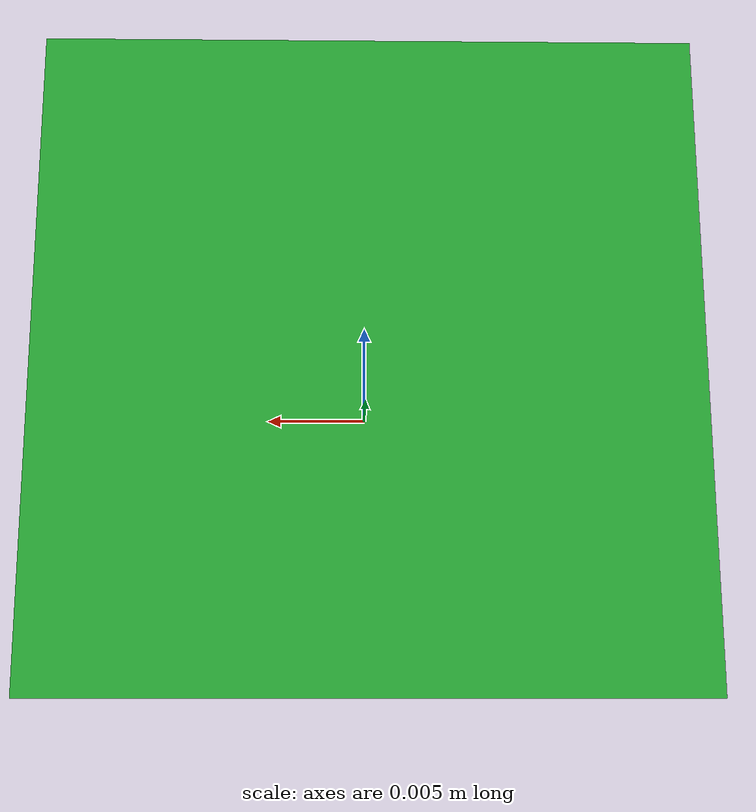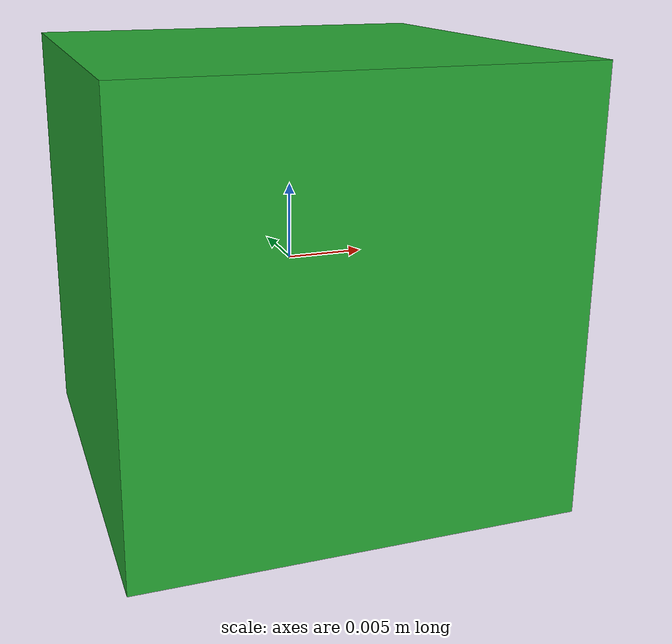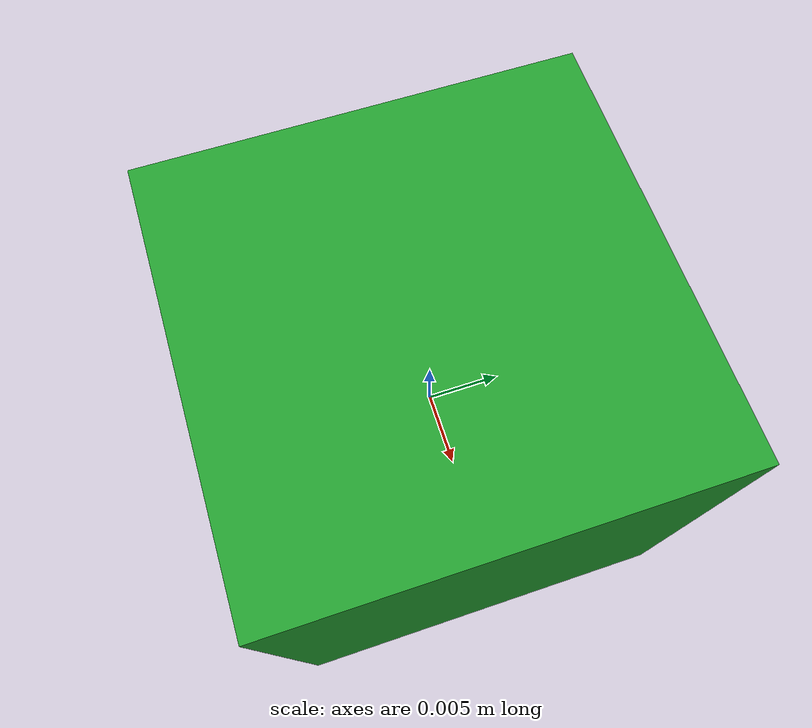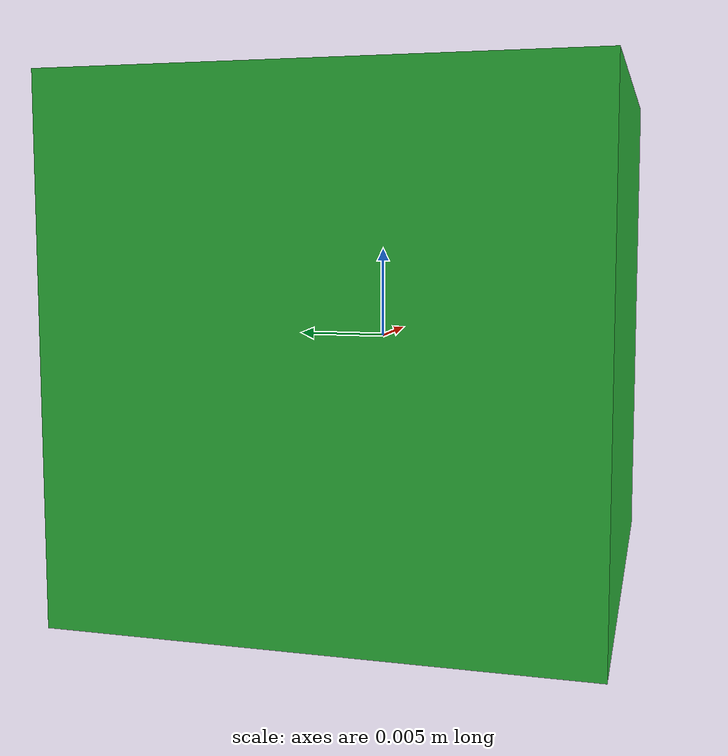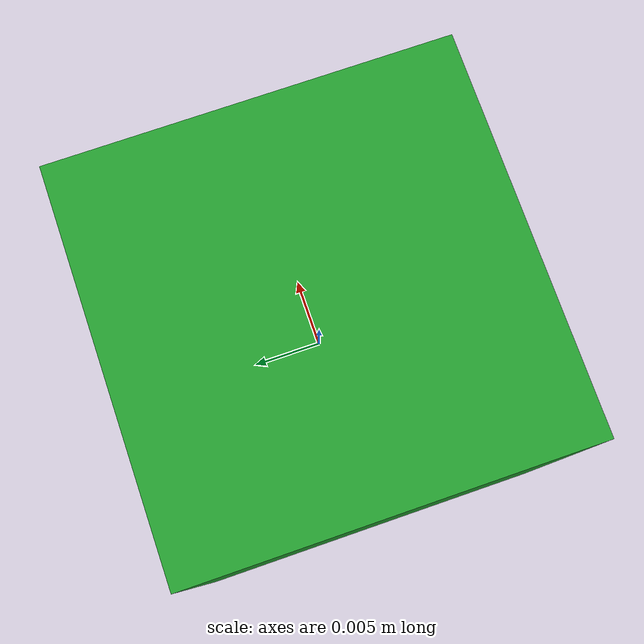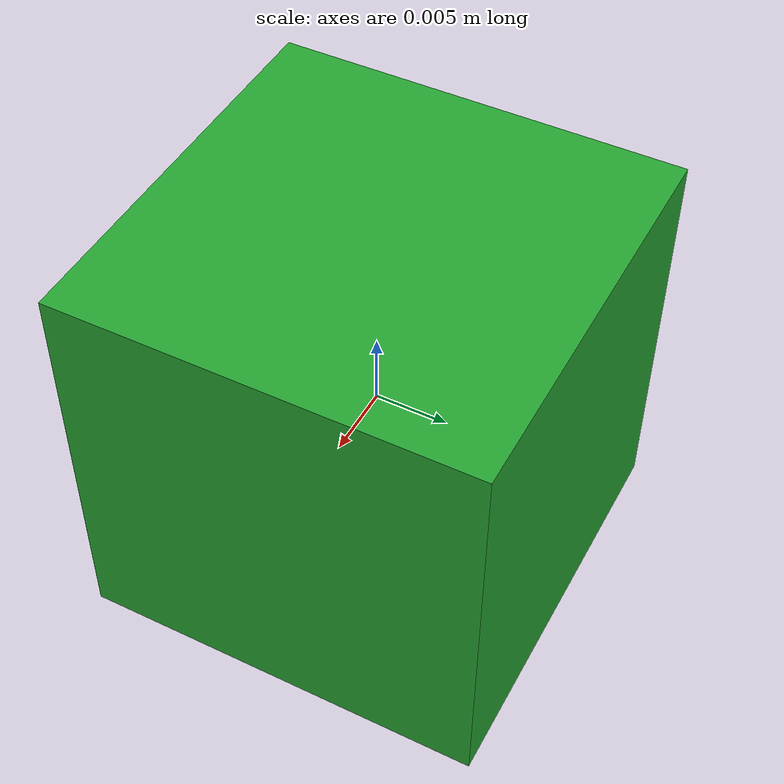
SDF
<?xml version="1.0" ?>
<sdf version="1.5">
  <!-- Just a simple cube -->
  <model name="block">
    <link name="body">
      <pose>0 0 0 0 0 0</pose>

      <!-- Inertial Properties -->
      <inertial>
        <pose>0 0 0 0 0 0</pose>
        <inertia>
          <ixx>0.00001568</ixx>
          <ixy>0</ixy>
          <ixz>0</ixz>
          <iyy>0.00001568</iyy>
          <iyz>0</iyz>
          <izz>0.00001568</izz>
        </inertia>
        <mass>0.12</mass>
      </inertial>

      <!-- Collision Mesh -->
      <collision name="body_col">
        <pose>0 0 0 0 0 0</pose>
        <geometry>
          <mesh>
            <uri>model://block_polycol/meshes/collision/block.dae</uri>
          </mesh>
        </geometry>
        <surface>
          <friction>
            <ode>
              <mu>100</mu>          <!-- DO NOT MODIFY -->
              <mu2>100</mu2>        <!-- DO NOT MODIFY -->
              <fdir1>0 0 0</fdir1>
              <slip1>0.0</slip1>
              <slip2>0.0</slip2>
            </ode>
            <bullet>
              <friction>100</friction>                  <!-- DO NOT MODIFY -->
              <friction2>100</friction2>                <!-- DO NOT MODIFY -->
              <fdir1>0 0 0</fdir1>
              <rolling_friction>100</rolling_friction>  <!-- DO NOT MODIFY -->
            </bullet>
          </friction>
          <contact>
            <ode>
              <soft_cfm>0</soft_cfm>
              <soft_erp>0.2</soft_erp>
              <kp>1e12</kp>
              <kd>1e8</kd>
              <max_vel>0.01</max_vel>
              <min_depth>0.002</min_depth>
            </ode>
            <bullet>
              <soft_cfm>0</soft_cfm>
              <soft_erp>0.2</soft_erp>
              <kp>1e12</kp>
              <kd>1.0</kd>
              <split_impulse>1</split_impulse>
              <split_impulse_penetration_threshold>-0.01</split_impulse_penetration_threshold>
            </bullet>
          </contact>
        </surface>
      </collision>

      <!-- Visible Mesh -->
      <visual name="body_vis">
        <pose>0 0 0 0 0 0</pose>
        <geometry>
          <box>
            <size>0.028 0.028 0.028</size>
          </box>
        </geometry>
        <material>
          <script>
            <uri>file://media/materials/scripts/gazebo.material</uri>
            <name>Gazebo/Green</name>
          </script>
        </material>
      </visual>

    </link>

    <!-- If some controller necessary for the prop, define here. -->
  </model>
</sdf>
